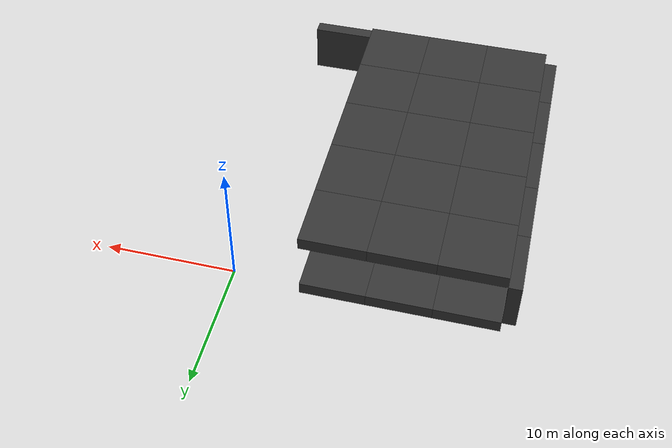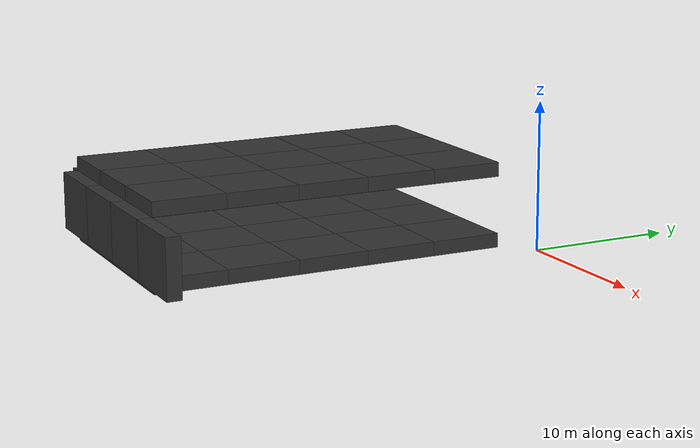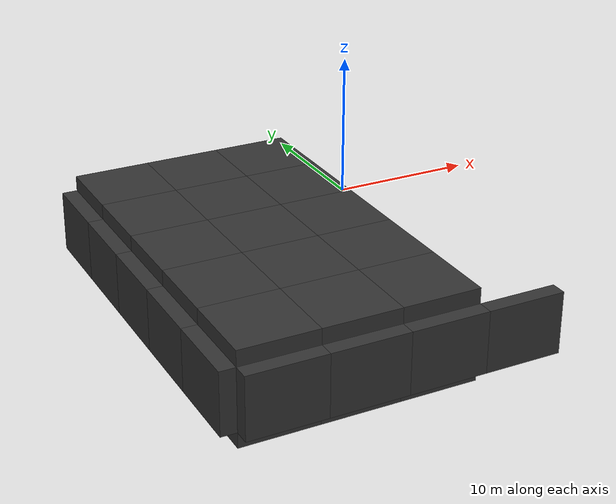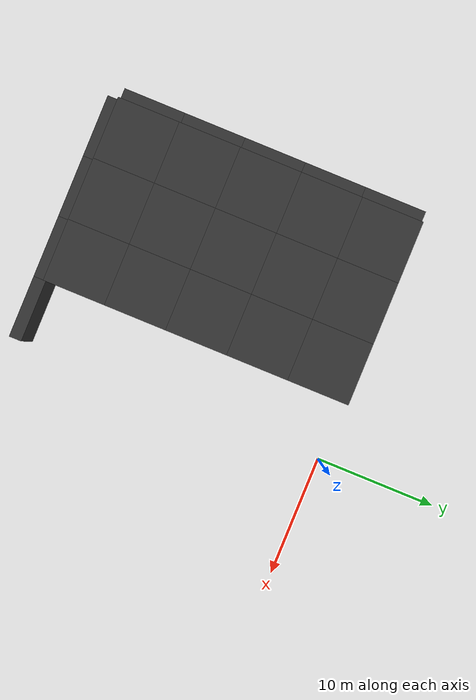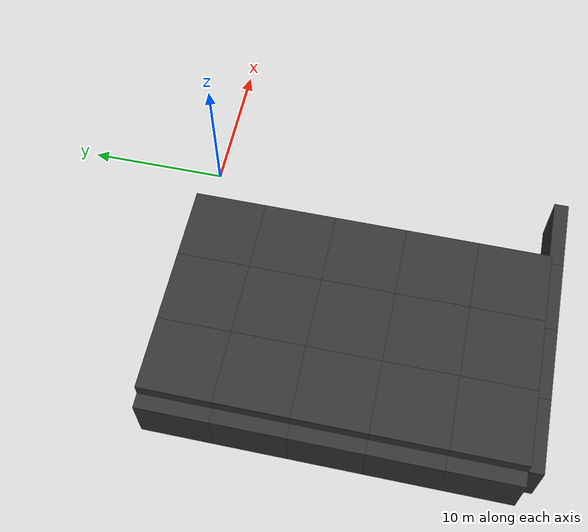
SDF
<sdf version="1.7">
 <world name="RG1">
  <model name="floor_1">
   <static>true</static>
   <pose>-17.5 -22.5 -0.5 0.0 0.0 0.0</pose>
   <link name="floor_1-base-link">
    <visual name="floor_1-visual">
     <geometry><box><size>5 5 1.0</size></box></geometry>
     <material><diffuse>0.2 0.2 0.2 1</diffuse><specular>0.1 0.1 0.1 1</specular></material>
    </visual>
    <collision name="floor_1-collision"><geometry><box><size>5 5 1.0</size></box></geometry></collision>
   </link>
  </model>
  <model name="ceiling_1">
   <static>true</static>
   <pose>-17.5 -22.5 4.5 0.0 0.0 0.0</pose>
   <link name="ceiling_1-base-link">
    <visual name="ceiling_1-visual">
     <geometry><box><size>5 5 1.0</size></box></geometry>
     <material><diffuse>0.2 0.2 0.2 1</diffuse><specular>0.1 0.1 0.1 1</specular></material>
    </visual>
    <collision name="ceiling_1-collision"><geometry><box><size>5 5 1.0</size></box></geometry></collision>
    <light type="point" name="ceiling_1-light">
     <pose>0 0 -1 0 0 0</pose>
     <cast_shadows>false</cast_shadows>
     <diffuse>0.8 0.8 0.8 1</diffuse>
     <attenuation>
      <range>10</range>
      <constant>0.8</constant>
      <linear>0.05</linear>
      <quadratic>0.01</quadratic>
     </attenuation>
    </light>
   </link>
  </model>
  <model name="wall_1">
   <static>true</static>
   <pose>-20.5 -22.5 2.0 0.0 0.0 1.570796326795</pose>
   <link name="wall_1-base-link">
    <visual name="wall_1-visual">
     <geometry><box><size>5 1 4</size></box></geometry>
     <material><diffuse>0.2 0.2 0.2 1</diffuse><specular>0.1 0.1 0.1 1</specular></material>
    </visual>
    <collision name="wall_1-collision"><geometry><box><size>5 1 4</size></box></geometry></collision>
   </link>
  </model>
  <model name="wall_2">
   <static>true</static>
   <pose>-17.5 -25.5 2.0 0.0 0.0 0.0</pose>
   <link name="wall_2-base-link">
    <visual name="wall_2-visual">
     <geometry><box><size>5 1 4</size></box></geometry>
     <material><diffuse>0.2 0.2 0.2 1</diffuse><specular>0.1 0.1 0.1 1</specular></material>
    </visual>
    <collision name="wall_2-collision"><geometry><box><size>5 1 4</size></box></geometry></collision>
   </link>
  </model>
  <model name="floor_2">
   <static>true</static>
   <pose>-17.5 -17.5 -0.5 0.0 0.0 0.0</pose>
   <link name="floor_2-base-link">
    <visual name="floor_2-visual">
     <geometry><box><size>5 5 1.0</size></box></geometry>
     <material><diffuse>0.2 0.2 0.2 1</diffuse><specular>0.1 0.1 0.1 1</specular></material>
    </visual>
    <collision name="floor_2-collision"><geometry><box><size>5 5 1.0</size></box></geometry></collision>
   </link>
  </model>
  <model name="ceiling_2">
   <static>true</static>
   <pose>-17.5 -17.5 4.5 0.0 0.0 0.0</pose>
   <link name="ceiling_2-base-link">
    <visual name="ceiling_2-visual">
     <geometry><box><size>5 5 1.0</size></box></geometry>
     <material><diffuse>0.2 0.2 0.2 1</diffuse><specular>0.1 0.1 0.1 1</specular></material>
    </visual>
    <collision name="ceiling_2-collision"><geometry><box><size>5 5 1.0</size></box></geometry></collision>
    <light type="point" name="ceiling_2-light">
     <pose>0 0 -1 0 0 0</pose>
     <cast_shadows>false</cast_shadows>
     <diffuse>0.8 0.8 0.8 1</diffuse>
     <attenuation>
      <range>10</range>
      <constant>0.8</constant>
      <linear>0.05</linear>
      <quadratic>0.01</quadratic>
     </attenuation>
    </light>
   </link>
  </model>
  <model name="wall_3">
   <static>true</static>
   <pose>-20.5 -17.5 2.0 0.0 0.0 1.570796326795</pose>
   <link name="wall_3-base-link">
    <visual name="wall_3-visual">
     <geometry><box><size>5 1 4</size></box></geometry>
     <material><diffuse>0.2 0.2 0.2 1</diffuse><specular>0.1 0.1 0.1 1</specular></material>
    </visual>
    <collision name="wall_3-collision"><geometry><box><size>5 1 4</size></box></geometry></collision>
   </link>
  </model>
  <model name="floor_3">
   <static>true</static>
   <pose>-17.5 -12.5 -0.5 0.0 0.0 0.0</pose>
   <link name="floor_3-base-link">
    <visual name="floor_3-visual">
     <geometry><box><size>5 5 1.0</size></box></geometry>
     <material><diffuse>0.2 0.2 0.2 1</diffuse><specular>0.1 0.1 0.1 1</specular></material>
    </visual>
    <collision name="floor_3-collision"><geometry><box><size>5 5 1.0</size></box></geometry></collision>
   </link>
  </model>
  <model name="ceiling_3">
   <static>true</static>
   <pose>-17.5 -12.5 4.5 0.0 0.0 0.0</pose>
   <link name="ceiling_3-base-link">
    <visual name="ceiling_3-visual">
     <geometry><box><size>5 5 1.0</size></box></geometry>
     <material><diffuse>0.2 0.2 0.2 1</diffuse><specular>0.1 0.1 0.1 1</specular></material>
    </visual>
    <collision name="ceiling_3-collision"><geometry><box><size>5 5 1.0</size></box></geometry></collision>
    <light type="point" name="ceiling_3-light">
     <pose>0 0 -1 0 0 0</pose>
     <cast_shadows>false</cast_shadows>
     <diffuse>0.8 0.8 0.8 1</diffuse>
     <attenuation>
      <range>10</range>
      <constant>0.8</constant>
      <linear>0.05</linear>
      <quadratic>0.01</quadratic>
     </attenuation>
    </light>
   </link>
  </model>
  <model name="wall_4">
   <static>true</static>
   <pose>-20.5 -12.5 2.0 0.0 0.0 1.570796326795</pose>
   <link name="wall_4-base-link">
    <visual name="wall_4-visual">
     <geometry><box><size>5 1 4</size></box></geometry>
     <material><diffuse>0.2 0.2 0.2 1</diffuse><specular>0.1 0.1 0.1 1</specular></material>
    </visual>
    <collision name="wall_4-collision"><geometry><box><size>5 1 4</size></box></geometry></collision>
   </link>
  </model>
  <model name="floor_4">
   <static>true</static>
   <pose>-17.5 -7.5 -0.5 0.0 0.0 0.0</pose>
   <link name="floor_4-base-link">
    <visual name="floor_4-visual">
     <geometry><box><size>5 5 1.0</size></box></geometry>
     <material><diffuse>0.2 0.2 0.2 1</diffuse><specular>0.1 0.1 0.1 1</specular></material>
    </visual>
    <collision name="floor_4-collision"><geometry><box><size>5 5 1.0</size></box></geometry></collision>
   </link>
  </model>
  <model name="ceiling_4">
   <static>true</static>
   <pose>-17.5 -7.5 4.5 0.0 0.0 0.0</pose>
   <link name="ceiling_4-base-link">
    <visual name="ceiling_4-visual">
     <geometry><box><size>5 5 1.0</size></box></geometry>
     <material><diffuse>0.2 0.2 0.2 1</diffuse><specular>0.1 0.1 0.1 1</specular></material>
    </visual>
    <collision name="ceiling_4-collision"><geometry><box><size>5 5 1.0</size></box></geometry></collision>
    <light type="point" name="ceiling_4-light">
     <pose>0 0 -1 0 0 0</pose>
     <cast_shadows>false</cast_shadows>
     <diffuse>0.8 0.8 0.8 1</diffuse>
     <attenuation>
      <range>10</range>
      <constant>0.8</constant>
      <linear>0.05</linear>
      <quadratic>0.01</quadratic>
     </attenuation>
    </light>
   </link>
  </model>
  <model name="wall_5">
   <static>true</static>
   <pose>-20.5 -7.5 2.0 0.0 0.0 1.570796326795</pose>
   <link name="wall_5-base-link">
    <visual name="wall_5-visual">
     <geometry><box><size>5 1 4</size></box></geometry>
     <material><diffuse>0.2 0.2 0.2 1</diffuse><specular>0.1 0.1 0.1 1</specular></material>
    </visual>
    <collision name="wall_5-collision"><geometry><box><size>5 1 4</size></box></geometry></collision>
   </link>
  </model>
  <model name="floor_5">
   <static>true</static>
   <pose>-17.5 -2.5 -0.5 0.0 0.0 0.0</pose>
   <link name="floor_5-base-link">
    <visual name="floor_5-visual">
     <geometry><box><size>5 5 1.0</size></box></geometry>
     <material><diffuse>0.2 0.2 0.2 1</diffuse><specular>0.1 0.1 0.1 1</specular></material>
    </visual>
    <collision name="floor_5-collision"><geometry><box><size>5 5 1.0</size></box></geometry></collision>
   </link>
  </model>
  <model name="ceiling_5">
   <static>true</static>
   <pose>-17.5 -2.5 4.5 0.0 0.0 0.0</pose>
   <link name="ceiling_5-base-link">
    <visual name="ceiling_5-visual">
     <geometry><box><size>5 5 1.0</size></box></geometry>
     <material><diffuse>0.2 0.2 0.2 1</diffuse><specular>0.1 0.1 0.1 1</specular></material>
    </visual>
    <collision name="ceiling_5-collision"><geometry><box><size>5 5 1.0</size></box></geometry></collision>
    <light type="point" name="ceiling_5-light">
     <pose>0 0 -1 0 0 0</pose>
     <cast_shadows>false</cast_shadows>
     <diffuse>0.8 0.8 0.8 1</diffuse>
     <attenuation>
      <range>10</range>
      <constant>0.8</constant>
      <linear>0.05</linear>
      <quadratic>0.01</quadratic>
     </attenuation>
    </light>
   </link>
  </model>
  <model name="wall_6">
   <static>true</static>
   <pose>-20.5 -2.5 2.0 0.0 0.0 1.570796326795</pose>
   <link name="wall_6-base-link">
    <visual name="wall_6-visual">
     <geometry><box><size>5 1 4</size></box></geometry>
     <material><diffuse>0.2 0.2 0.2 1</diffuse><specular>0.1 0.1 0.1 1</specular></material>
    </visual>
    <collision name="wall_6-collision"><geometry><box><size>5 1 4</size></box></geometry></collision>
   </link>
  </model>
  <model name="floor_10">
   <static>true</static>
   <pose>-12.5 -22.5 -0.5 0.0 0.0 0.0</pose>
   <link name="floor_10-base-link">
    <visual name="floor_10-visual">
     <geometry><box><size>5 5 1.0</size></box></geometry>
     <material><diffuse>0.2 0.2 0.2 1</diffuse><specular>0.1 0.1 0.1 1</specular></material>
    </visual>
    <collision name="floor_10-collision"><geometry><box><size>5 5 1.0</size></box></geometry></collision>
   </link>
  </model>
  <model name="ceiling_10">
   <static>true</static>
   <pose>-12.5 -22.5 4.5 0.0 0.0 0.0</pose>
   <link name="ceiling_10-base-link">
    <visual name="ceiling_10-visual">
     <geometry><box><size>5 5 1.0</size></box></geometry>
     <material><diffuse>0.2 0.2 0.2 1</diffuse><specular>0.1 0.1 0.1 1</specular></material>
    </visual>
    <collision name="ceiling_10-collision"><geometry><box><size>5 5 1.0</size></box></geometry></collision>
    <light type="point" name="ceiling_10-light">
     <pose>0 0 -1 0 0 0</pose>
     <cast_shadows>false</cast_shadows>
     <diffuse>0.8 0.8 0.8 1</diffuse>
     <attenuation>
      <range>10</range>
      <constant>0.8</constant>
      <linear>0.05</linear>
      <quadratic>0.01</quadratic>
     </attenuation>
    </light>
   </link>
  </model>
  <model name="wall_12">
   <static>true</static>
   <pose>-12.5 -25.5 2.0 0.0 0.0 0.0</pose>
   <link name="wall_12-base-link">
    <visual name="wall_12-visual">
     <geometry><box><size>5 1 4</size></box></geometry>
     <material><diffuse>0.2 0.2 0.2 1</diffuse><specular>0.1 0.1 0.1 1</specular></material>
    </visual>
    <collision name="wall_12-collision"><geometry><box><size>5 1 4</size></box></geometry></collision>
   </link>
  </model>
  <model name="floor_11">
   <static>true</static>
   <pose>-12.5 -17.5 -0.5 0.0 0.0 0.0</pose>
   <link name="floor_11-base-link">
    <visual name="floor_11-visual">
     <geometry><box><size>5 5 1.0</size></box></geometry>
     <material><diffuse>0.2 0.2 0.2 1</diffuse><specular>0.1 0.1 0.1 1</specular></material>
    </visual>
    <collision name="floor_11-collision"><geometry><box><size>5 5 1.0</size></box></geometry></collision>
   </link>
  </model>
  <model name="ceiling_11">
   <static>true</static>
   <pose>-12.5 -17.5 4.5 0.0 0.0 0.0</pose>
   <link name="ceiling_11-base-link">
    <visual name="ceiling_11-visual">
     <geometry><box><size>5 5 1.0</size></box></geometry>
     <material><diffuse>0.2 0.2 0.2 1</diffuse><specular>0.1 0.1 0.1 1</specular></material>
    </visual>
    <collision name="ceiling_11-collision"><geometry><box><size>5 5 1.0</size></box></geometry></collision>
    <light type="point" name="ceiling_11-light">
     <pose>0 0 -1 0 0 0</pose>
     <cast_shadows>false</cast_shadows>
     <diffuse>0.8 0.8 0.8 1</diffuse>
     <attenuation>
      <range>10</range>
      <constant>0.8</constant>
      <linear>0.05</linear>
      <quadratic>0.01</quadratic>
     </attenuation>
    </light>
   </link>
  </model>
  <model name="floor_12">
   <static>true</static>
   <pose>-12.5 -12.5 -0.5 0.0 0.0 0.0</pose>
   <link name="floor_12-base-link">
    <visual name="floor_12-visual">
     <geometry><box><size>5 5 1.0</size></box></geometry>
     <material><diffuse>0.2 0.2 0.2 1</diffuse><specular>0.1 0.1 0.1 1</specular></material>
    </visual>
    <collision name="floor_12-collision"><geometry><box><size>5 5 1.0</size></box></geometry></collision>
   </link>
  </model>
  <model name="ceiling_12">
   <static>true</static>
   <pose>-12.5 -12.5 4.5 0.0 0.0 0.0</pose>
   <link name="ceiling_12-base-link">
    <visual name="ceiling_12-visual">
     <geometry><box><size>5 5 1.0</size></box></geometry>
     <material><diffuse>0.2 0.2 0.2 1</diffuse><specular>0.1 0.1 0.1 1</specular></material>
    </visual>
    <collision name="ceiling_12-collision"><geometry><box><size>5 5 1.0</size></box></geometry></collision>
    <light type="point" name="ceiling_12-light">
     <pose>0 0 -1 0 0 0</pose>
     <cast_shadows>false</cast_shadows>
     <diffuse>0.8 0.8 0.8 1</diffuse>
     <attenuation>
      <range>10</range>
      <constant>0.8</constant>
      <linear>0.05</linear>
      <quadratic>0.01</quadratic>
     </attenuation>
    </light>
   </link>
  </model>
  <model name="floor_13">
   <static>true</static>
   <pose>-12.5 -7.5 -0.5 0.0 0.0 0.0</pose>
   <link name="floor_13-base-link">
    <visual name="floor_13-visual">
     <geometry><box><size>5 5 1.0</size></box></geometry>
     <material><diffuse>0.2 0.2 0.2 1</diffuse><specular>0.1 0.1 0.1 1</specular></material>
    </visual>
    <collision name="floor_13-collision"><geometry><box><size>5 5 1.0</size></box></geometry></collision>
   </link>
  </model>
  <model name="ceiling_13">
   <static>true</static>
   <pose>-12.5 -7.5 4.5 0.0 0.0 0.0</pose>
   <link name="ceiling_13-base-link">
    <visual name="ceiling_13-visual">
     <geometry><box><size>5 5 1.0</size></box></geometry>
     <material><diffuse>0.2 0.2 0.2 1</diffuse><specular>0.1 0.1 0.1 1</specular></material>
    </visual>
    <collision name="ceiling_13-collision"><geometry><box><size>5 5 1.0</size></box></geometry></collision>
    <light type="point" name="ceiling_13-light">
     <pose>0 0 -1 0 0 0</pose>
     <cast_shadows>false</cast_shadows>
     <diffuse>0.8 0.8 0.8 1</diffuse>
     <attenuation>
      <range>10</range>
      <constant>0.8</constant>
      <linear>0.05</linear>
      <quadratic>0.01</quadratic>
     </attenuation>
    </light>
   </link>
  </model>
  <model name="floor_14">
   <static>true</static>
   <pose>-12.5 -2.5 -0.5 0.0 0.0 0.0</pose>
   <link name="floor_14-base-link">
    <visual name="floor_14-visual">
     <geometry><box><size>5 5 1.0</size></box></geometry>
     <material><diffuse>0.2 0.2 0.2 1</diffuse><specular>0.1 0.1 0.1 1</specular></material>
    </visual>
    <collision name="floor_14-collision"><geometry><box><size>5 5 1.0</size></box></geometry></collision>
   </link>
  </model>
  <model name="ceiling_14">
   <static>true</static>
   <pose>-12.5 -2.5 4.5 0.0 0.0 0.0</pose>
   <link name="ceiling_14-base-link">
    <visual name="ceiling_14-visual">
     <geometry><box><size>5 5 1.0</size></box></geometry>
     <material><diffuse>0.2 0.2 0.2 1</diffuse><specular>0.1 0.1 0.1 1</specular></material>
    </visual>
    <collision name="ceiling_14-collision"><geometry><box><size>5 5 1.0</size></box></geometry></collision>
    <light type="point" name="ceiling_14-light">
     <pose>0 0 -1 0 0 0</pose>
     <cast_shadows>false</cast_shadows>
     <diffuse>0.8 0.8 0.8 1</diffuse>
     <attenuation>
      <range>10</range>
      <constant>0.8</constant>
      <linear>0.05</linear>
      <quadratic>0.01</quadratic>
     </attenuation>
    </light>
   </link>
  </model>
  <model name="floor_19">
   <static>true</static>
   <pose>-7.5 -22.5 -0.5 0.0 0.0 0.0</pose>
   <link name="floor_19-base-link">
    <visual name="floor_19-visual">
     <geometry><box><size>5 5 1.0</size></box></geometry>
     <material><diffuse>0.2 0.2 0.2 1</diffuse><specular>0.1 0.1 0.1 1</specular></material>
    </visual>
    <collision name="floor_19-collision"><geometry><box><size>5 5 1.0</size></box></geometry></collision>
   </link>
  </model>
  <model name="ceiling_19">
   <static>true</static>
   <pose>-7.5 -22.5 4.5 0.0 0.0 0.0</pose>
   <link name="ceiling_19-base-link">
    <visual name="ceiling_19-visual">
     <geometry><box><size>5 5 1.0</size></box></geometry>
     <material><diffuse>0.2 0.2 0.2 1</diffuse><specular>0.1 0.1 0.1 1</specular></material>
    </visual>
    <collision name="ceiling_19-collision"><geometry><box><size>5 5 1.0</size></box></geometry></collision>
    <light type="point" name="ceiling_19-light">
     <pose>0 0 -1 0 0 0</pose>
     <cast_shadows>false</cast_shadows>
     <diffuse>0.8 0.8 0.8 1</diffuse>
     <attenuation>
      <range>10</range>
      <constant>0.8</constant>
      <linear>0.05</linear>
      <quadratic>0.01</quadratic>
     </attenuation>
    </light>
   </link>
  </model>
  <model name="wall_14">
   <static>true</static>
   <pose>-7.5 -25.5 2.0 0.0 0.0 0.0</pose>
   <link name="wall_14-base-link">
    <visual name="wall_14-visual">
     <geometry><box><size>5 1 4</size></box></geometry>
     <material><diffuse>0.2 0.2 0.2 1</diffuse><specular>0.1 0.1 0.1 1</specular></material>
    </visual>
    <collision name="wall_14-collision"><geometry><box><size>5 1 4</size></box></geometry></collision>
   </link>
  </model>
  <model name="floor_20">
   <static>true</static>
   <pose>-7.5 -17.5 -0.5 0.0 0.0 0.0</pose>
   <link name="floor_20-base-link">
    <visual name="floor_20-visual">
     <geometry><box><size>5 5 1.0</size></box></geometry>
     <material><diffuse>0.2 0.2 0.2 1</diffuse><specular>0.1 0.1 0.1 1</specular></material>
    </visual>
    <collision name="floor_20-collision"><geometry><box><size>5 5 1.0</size></box></geometry></collision>
   </link>
  </model>
  <model name="ceiling_20">
   <static>true</static>
   <pose>-7.5 -17.5 4.5 0.0 0.0 0.0</pose>
   <link name="ceiling_20-base-link">
    <visual name="ceiling_20-visual">
     <geometry><box><size>5 5 1.0</size></box></geometry>
     <material><diffuse>0.2 0.2 0.2 1</diffuse><specular>0.1 0.1 0.1 1</specular></material>
    </visual>
    <collision name="ceiling_20-collision"><geometry><box><size>5 5 1.0</size></box></geometry></collision>
    <light type="point" name="ceiling_20-light">
     <pose>0 0 -1 0 0 0</pose>
     <cast_shadows>false</cast_shadows>
     <diffuse>0.8 0.8 0.8 1</diffuse>
     <attenuation>
      <range>10</range>
      <constant>0.8</constant>
      <linear>0.05</linear>
      <quadratic>0.01</quadratic>
     </attenuation>
    </light>
   </link>
  </model>
  <model name="floor_21">
   <static>true</static>
   <pose>-7.5 -12.5 -0.5 0.0 0.0 0.0</pose>
   <link name="floor_21-base-link">
    <visual name="floor_21-visual">
     <geometry><box><size>5 5 1.0</size></box></geometry>
     <material><diffuse>0.2 0.2 0.2 1</diffuse><specular>0.1 0.1 0.1 1</specular></material>
    </visual>
    <collision name="floor_21-collision"><geometry><box><size>5 5 1.0</size></box></geometry></collision>
   </link>
  </model>
  <model name="ceiling_21">
   <static>true</static>
   <pose>-7.5 -12.5 4.5 0.0 0.0 0.0</pose>
   <link name="ceiling_21-base-link">
    <visual name="ceiling_21-visual">
     <geometry><box><size>5 5 1.0</size></box></geometry>
     <material><diffuse>0.2 0.2 0.2 1</diffuse><specular>0.1 0.1 0.1 1</specular></material>
    </visual>
    <collision name="ceiling_21-collision"><geometry><box><size>5 5 1.0</size></box></geometry></collision>
    <light type="point" name="ceiling_21-light">
     <pose>0 0 -1 0 0 0</pose>
     <cast_shadows>false</cast_shadows>
     <diffuse>0.8 0.8 0.8 1</diffuse>
     <attenuation>
      <range>10</range>
      <constant>0.8</constant>
      <linear>0.05</linear>
      <quadratic>0.01</quadratic>
     </attenuation>
    </light>
   </link>
  </model>
  <model name="floor_22">
   <static>true</static>
   <pose>-7.5 -7.5 -0.5 0.0 0.0 0.0</pose>
   <link name="floor_22-base-link">
    <visual name="floor_22-visual">
     <geometry><box><size>5 5 1.0</size></box></geometry>
     <material><diffuse>0.2 0.2 0.2 1</diffuse><specular>0.1 0.1 0.1 1</specular></material>
    </visual>
    <collision name="floor_22-collision"><geometry><box><size>5 5 1.0</size></box></geometry></collision>
   </link>
  </model>
  <model name="ceiling_22">
   <static>true</static>
   <pose>-7.5 -7.5 4.5 0.0 0.0 0.0</pose>
   <link name="ceiling_22-base-link">
    <visual name="ceiling_22-visual">
     <geometry><box><size>5 5 1.0</size></box></geometry>
     <material><diffuse>0.2 0.2 0.2 1</diffuse><specular>0.1 0.1 0.1 1</specular></material>
    </visual>
    <collision name="ceiling_22-collision"><geometry><box><size>5 5 1.0</size></box></geometry></collision>
    <light type="point" name="ceiling_22-light">
     <pose>0 0 -1 0 0 0</pose>
     <cast_shadows>false</cast_shadows>
     <diffuse>0.8 0.8 0.8 1</diffuse>
     <attenuation>
      <range>10</range>
      <constant>0.8</constant>
      <linear>0.05</linear>
      <quadratic>0.01</quadratic>
     </attenuation>
    </light>
   </link>
  </model>
  <model name="floor_23">
   <static>true</static>
   <pose>-7.5 -2.5 -0.5 0.0 0.0 0.0</pose>
   <link name="floor_23-base-link">
    <visual name="floor_23-visual">
     <geometry><box><size>5 5 1.0</size></box></geometry>
     <material><diffuse>0.2 0.2 0.2 1</diffuse><specular>0.1 0.1 0.1 1</specular></material>
    </visual>
    <collision name="floor_23-collision"><geometry><box><size>5 5 1.0</size></box></geometry></collision>
   </link>
  </model>
  <model name="ceiling_23">
   <static>true</static>
   <pose>-7.5 -2.5 4.5 0.0 0.0 0.0</pose>
   <link name="ceiling_23-base-link">
    <visual name="ceiling_23-visual">
     <geometry><box><size>5 5 1.0</size></box></geometry>
     <material><diffuse>0.2 0.2 0.2 1</diffuse><specular>0.1 0.1 0.1 1</specular></material>
    </visual>
    <collision name="ceiling_23-collision"><geometry><box><size>5 5 1.0</size></box></geometry></collision>
    <light type="point" name="ceiling_23-light">
     <pose>0 0 -1 0 0 0</pose>
     <cast_shadows>false</cast_shadows>
     <diffuse>0.8 0.8 0.8 1</diffuse>
     <attenuation>
      <range>10</range>
      <constant>0.8</constant>
      <linear>0.05</linear>
      <quadratic>0.01</quadratic>
     </attenuation>
    </light>
   </link>
  </model>
  <model name="wall_16">
   <static>true</static>
   <pose>-2.5 -25.5 2.0 0.0 0.0 0.0</pose>
   <link name="wall_16-base-link">
    <visual name="wall_16-visual">
     <geometry><box><size>5 1 4</size></box></geometry>
     <material><diffuse>0.2 0.2 0.2 1</diffuse><specular>0.1 0.1 0.1 1</specular></material>
    </visual>
    <collision name="wall_16-collision"><geometry><box><size>5 1 4</size></box></geometry></collision>
   </link>
  </model>
 </world>
</sdf>
